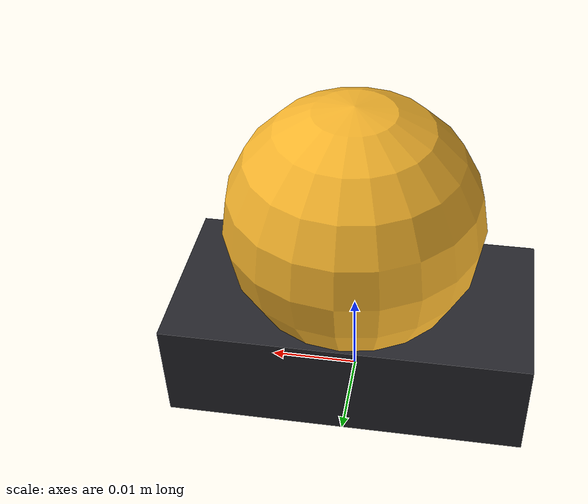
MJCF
<mujoco model="amber_lamp">
  <default>
    <default class="amber_lamp_geom">
      <geom contype="1" conaffinity="1"/>
    </default>
  </default>

  <asset>
    <material name="amber_lamp_shell" rgba="0.16 0.16 0.18 1"/>
    <material name="amber_lamp_glow" rgba="0.98 0.72 0.18 0.95"/>
  </asset>

  <worldbody>
    <body name="amber_lamp">
      <geom
        name="amber_lamp_base"
        class="amber_lamp_geom"
        type="box"
        pos="0 0 0.006"
        size="0.020 0.010 0.006"
        material="amber_lamp_shell"
      />
      <geom
        name="amber_lamp_cover"
        class="amber_lamp_geom"
        type="sphere"
        pos="0 0 0.022"
        size="0.014"
        material="amber_lamp_glow"
      />
    </body>
  </worldbody>
</mujoco>
